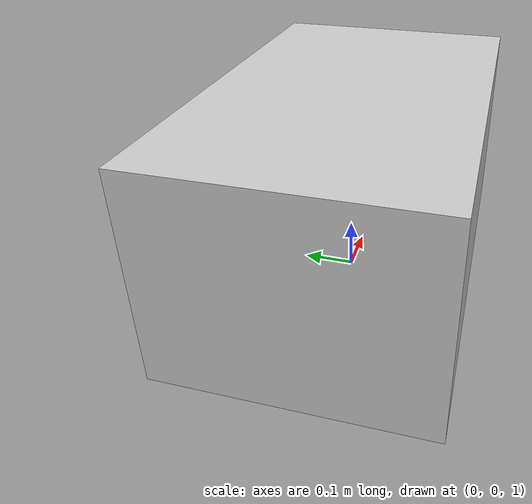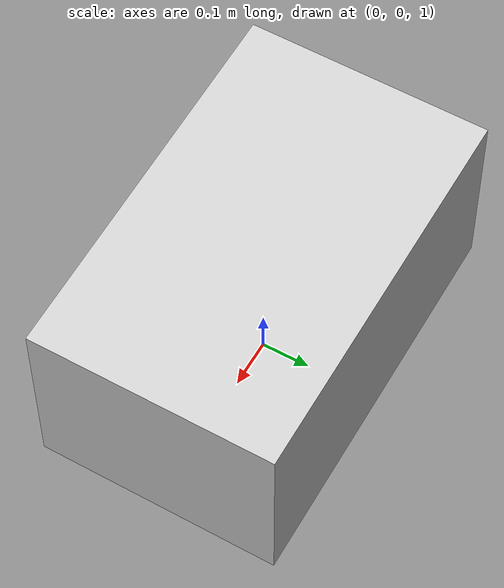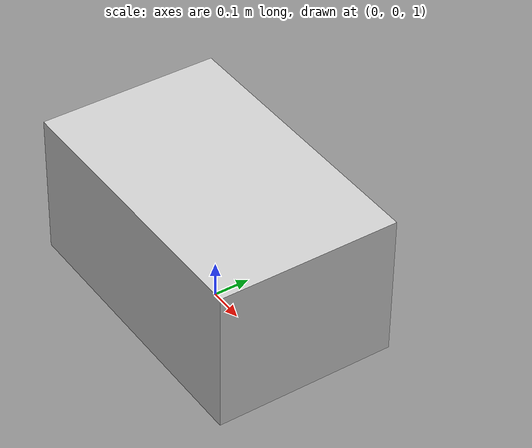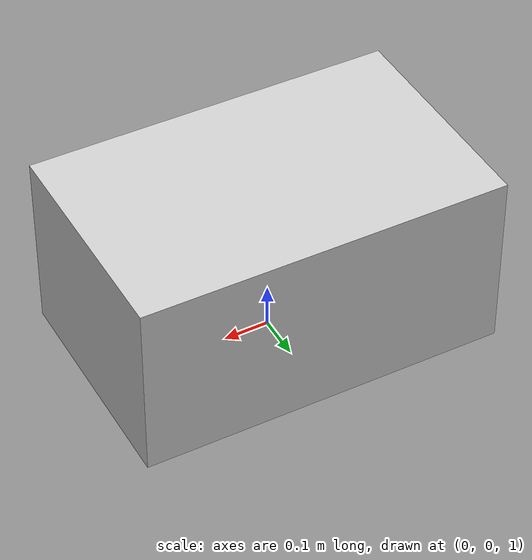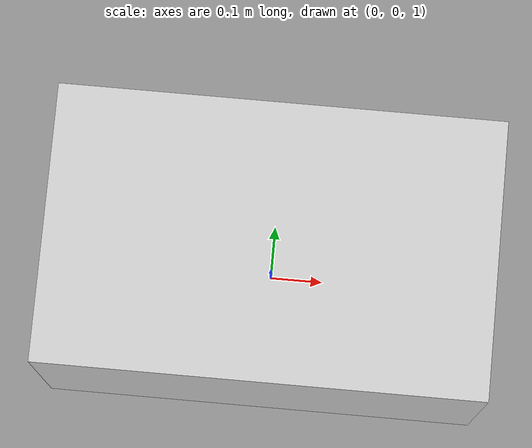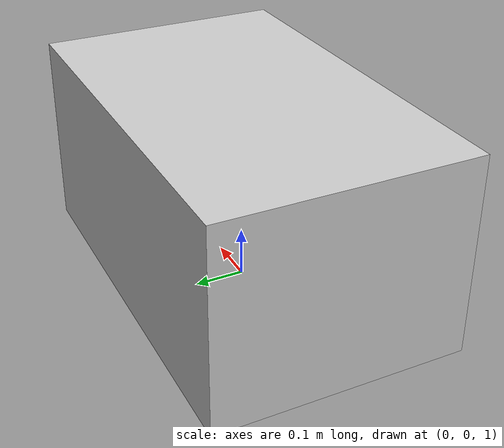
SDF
<?xml version="1.0" ?>
<sdf version="1.7">
  <world name="hackathon_world">
  <include>
    <uri>model://test_trolley</uri>
    <name>camera_1</name>
    <pose>0 0 1 0 0 0</pose>
  </include>
  </world>
</sdf>

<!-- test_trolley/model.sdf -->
<sdf version="1.7">
  <model name="trolley">
    <pose>0 0 0 0 0 0</pose>
    <!-- Simple rectangular chassis -->
    <link name="base_link">
      <pose>0 0 0.2 0 0 0</pose>
      <visual name="body_visual">
        <geometry>
          <box>
            <size>0.8 0.5 0.4</size>
          </box>
        </geometry>
        <material>
          <ambient>0.4 0.4 0.4 1</ambient>
          <diffuse>0.8 0.8 0.8 1</diffuse>
        </material>
      </visual>
      <collision name="body_collision">
        <geometry>
          <box>
            <size>0.8 0.5 0.4</size>
          </box>
        </geometry>
      </collision>
      <inertial>
        <mass>10.0</mass>
      </inertial>
    </link>

    <!-- Camera Sensor (front center) -->
    <link name="camera_link">
      <pose>0.35 0 0.5 0 0 0</pose>
      <sensor name="my_camera" type="camera">
      </sensor>
    </link>

    <!-- RGB-D Camera Sensor (front left) -->
    <link name="rgbd_camera_link">
      <pose>0.2 0.18 0.5 0 0 0</pose>
      <sensor name="my_rgbd_camera" type="depth">
        <!-- Insert the contents of your rgbd_camera_1/model.sdf sensor element here. -->
      </sensor>
    </link>

    <!-- Ultrasonic Sensor (front right, low) -->
    <link name="ultrasonic_link">
      <pose>0.2 -0.18 0.25 0 0 0</pose>
      <sensor name="my_ultrasonic" type="ray">
         <camera>
    <horizontal_fov>1.57</horizontal_fov> <!-- ~90deg -->
    <image>
      <width>640</width>
      <height>480</height>
      <format>R8G8B8</format>
    </image>
    <clip>
      <near>0.1</near>
      <far>100</far>
    </clip>
  </camera>
  <always_on>true</always_on>
  <update_rate>30.0</update_rate>
  <visualize>true</visualize>

    <camera_name>my_camera</camera_name>
    <image_topic_name>image_raw</image_topic_name>
    <camera_info_topic_name>camera_info</camera_info_topic_name>
    <frame_name>camera_link</frame_name>

      </sensor>
    </link>
  </model>
</sdf>
